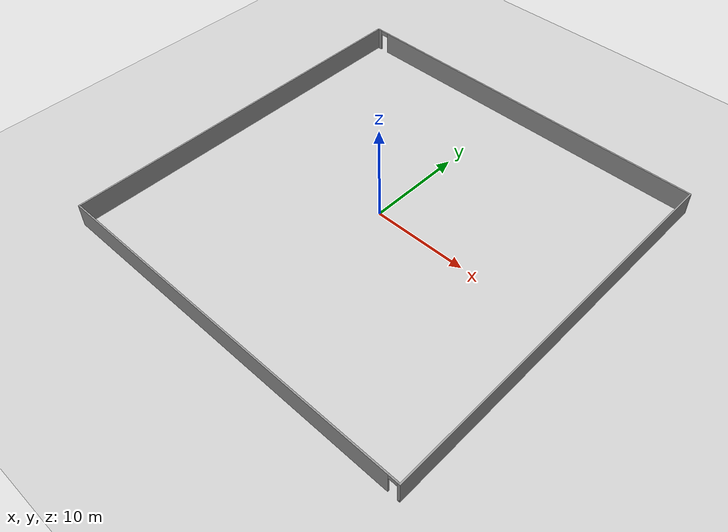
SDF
<sdf version="1.6">
 <world name="default">
  <light name="sun" type="directional">
   <pose>0 0 10 0 -0 0</pose>
   <diffuse>0.8 0.8 0.8 1</diffuse>
   <specular>0.1 0.1 0.1 1</specular>
   <attenuation>
    <range>1000</range>
    <constant>0.9</constant>
    <linear>0.01</linear>
    <quadratic>0.001</quadratic>
   </attenuation>
   <direction>-0.5 0.5 -1</direction>
  </light>
  <model name="ground_plane">
   <static>1</static>
   <link name="link">
    <collision name="collision">
     <geometry><plane><normal>0 0 1</normal><size>100 100</size></plane></geometry>
     <surface><friction><ode><mu>100</mu><mu2>50</mu2></ode></friction></surface>
    </collision>
    <visual name="visual">
     <cast_shadows>0</cast_shadows>
     <geometry><plane><normal>0 0 1</normal><size>100 100</size></plane></geometry>
     <material>
      <script><uri>file://media/materials/scripts/gazebo.material</uri><name>Gazebo/Grey</name></script>
     </material>
    </visual>
   </link>
  </model>
  <gravity>0 0 -9.8</gravity>
  <magnetic_field>6e-06 2.3e-05 -4.2e-05</magnetic_field>
  <atmosphere type="adiabatic"/>
  <physics name="default_physics" default="0" type="ode">
   <max_step_size>0.001</max_step_size>
   <real_time_factor>1</real_time_factor>
   <real_time_update_rate>1000</real_time_update_rate>
  </physics>
  <scene><ambient>0.4 0.4 0.4 1</ambient><background>0.7 0.7 0.7 1</background><shadows>1</shadows></scene>
  <spherical_coordinates>
   <surface_model>EARTH_WGS84</surface_model>
   <latitude_deg>0</latitude_deg>
   <longitude_deg>0</longitude_deg>
   <elevation>0</elevation>
   <heading_deg>0</heading_deg>
  </spherical_coordinates>
  <model name="40x40">
   <pose>0.9682 -0.068792 0 0 -0 0</pose>
   <link name="Wall_17">
    <collision name="Wall_17_Collision">
     <geometry><box><size>39.75 0.15 2.5</size></box></geometry>
     <pose>0 0 1.25 0 -0 0</pose>
    </collision>
    <visual name="Wall_17_Visual">
     <pose>0 0 1.25 0 -0 0</pose>
     <geometry><box><size>39.75 0.15 2.5</size></box></geometry>
     <material>
      <script><uri>file://media/materials/scripts/gazebo.material</uri><name>Gazebo/Grey</name></script>
      <ambient>1 1 1 1</ambient>
     </material>
    </visual>
    <pose>-19.925 -1e-06 0 0 0 -1.5708</pose>
   </link>
   <link name="Wall_18">
    <pose>0 -19.8 0 0 -0 0</pose>
    <visual name="Wall_18_Visual_0">
     <pose>-0.591336 0 1.25 0 -0 0</pose>
     <geometry><box><size>38.8173 0.15 2.5</size></box></geometry>
     <material>
      <script><uri>file://media/materials/scripts/gazebo.material</uri><name>Gazebo/Grey</name></script>
      <ambient>1 1 1 1</ambient>
     </material>
    </visual>
    <collision name="Wall_18_Collision_0">
     <geometry><box><size>38.8173 0.15 2.5</size></box></geometry>
     <pose>-0.591336 0 1.25 0 -0 0</pose>
    </collision>
    <visual name="Wall_18_Visual_1">
     <pose>19.8587 0 1.25 0 -0 0</pose>
     <geometry><box><size>0.282673 0.15 2.5</size></box></geometry>
     <material>
      <script><uri>file://media/materials/scripts/gazebo.material</uri><name>Gazebo/Grey</name></script>
      <ambient>1 1 1 1</ambient>
     </material>
    </visual>
    <collision name="Wall_18_Collision_1">
     <geometry><box><size>0.282673 0.15 2.5</size></box></geometry>
     <pose>19.8587 0 1.25 0 -0 0</pose>
    </collision>
    <visual name="Wall_18_Visual_2">
     <pose>19.2673 0 2.25 0 -0 0</pose>
     <geometry><box><size>0.9 0.15 0.5</size></box></geometry>
     <material>
      <script><uri>file://media/materials/scripts/gazebo.material</uri><name>Gazebo/Grey</name></script>
      <ambient>1 1 1 1</ambient>
     </material>
    </visual>
    <collision name="Wall_18_Collision_2">
     <geometry><box><size>0.9 0.15 0.5</size></box></geometry>
     <pose>19.2673 0 2.25 0 -0 0</pose>
    </collision>
   </link>
   <link name="Wall_19">
    <collision name="Wall_19_Collision">
     <geometry><box><size>39.75 0.15 2.5</size></box></geometry>
     <pose>0 0 1.25 0 -0 0</pose>
    </collision>
    <visual name="Wall_19_Visual">
     <pose>0 0 1.25 0 -0 0</pose>
     <geometry><box><size>39.75 0.15 2.5</size></box></geometry>
     <material>
      <script><uri>file://media/materials/scripts/gazebo.material</uri><name>Gazebo/Grey</name></script>
      <ambient>1 1 1 1</ambient>
     </material>
    </visual>
    <pose>19.925 -1e-06 0 0 -0 1.5708</pose>
   </link>
   <link name="Wall_20">
    <pose>0 19.8 0 0 -0 3.14159</pose>
    <visual name="Wall_20_Visual_0">
     <pose>-0.736569 0 1.25 0 -0 0</pose>
     <geometry><box><size>38.5269 0.15 2.5</size></box></geometry>
     <material>
      <script><uri>file://media/materials/scripts/gazebo.material</uri><name>Gazebo/Grey</name></script>
      <ambient>1 1 1 1</ambient>
     </material>
    </visual>
    <collision name="Wall_20_Collision_0">
     <geometry><box><size>38.5269 0.15 2.5</size></box></geometry>
     <pose>-0.736569 0 1.25 0 -0 0</pose>
    </collision>
    <visual name="Wall_20_Visual_1">
     <pose>19.7134 0 1.25 0 -0 0</pose>
     <geometry><box><size>0.573139 0.15 2.5</size></box></geometry>
     <material>
      <script><uri>file://media/materials/scripts/gazebo.material</uri><name>Gazebo/Grey</name></script>
      <ambient>1 1 1 1</ambient>
     </material>
    </visual>
    <collision name="Wall_20_Collision_1">
     <geometry><box><size>0.573139 0.15 2.5</size></box></geometry>
     <pose>19.7134 0 1.25 0 -0 0</pose>
    </collision>
    <visual name="Wall_20_Visual_2">
     <pose>18.9769 0 2.25 0 -0 0</pose>
     <geometry><box><size>0.9 0.15 0.5</size></box></geometry>
     <material>
      <script><uri>file://media/materials/scripts/gazebo.material</uri><name>Gazebo/Grey</name></script>
      <ambient>1 1 1 1</ambient>
     </material>
    </visual>
    <collision name="Wall_20_Collision_2">
     <geometry><box><size>0.9 0.15 0.5</size></box></geometry>
     <pose>18.9769 0 2.25 0 -0 0</pose>
    </collision>
   </link>
   <static>1</static>
  </model>
 </world>
</sdf>
